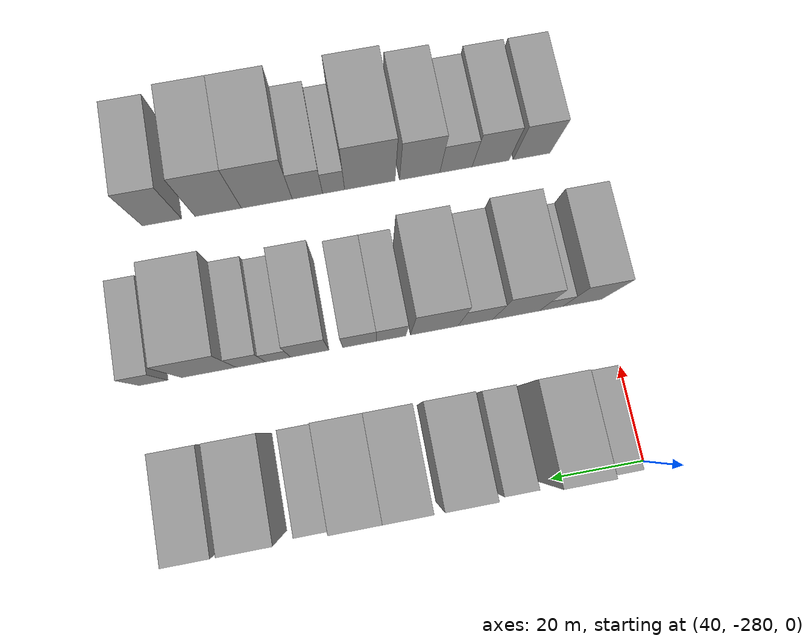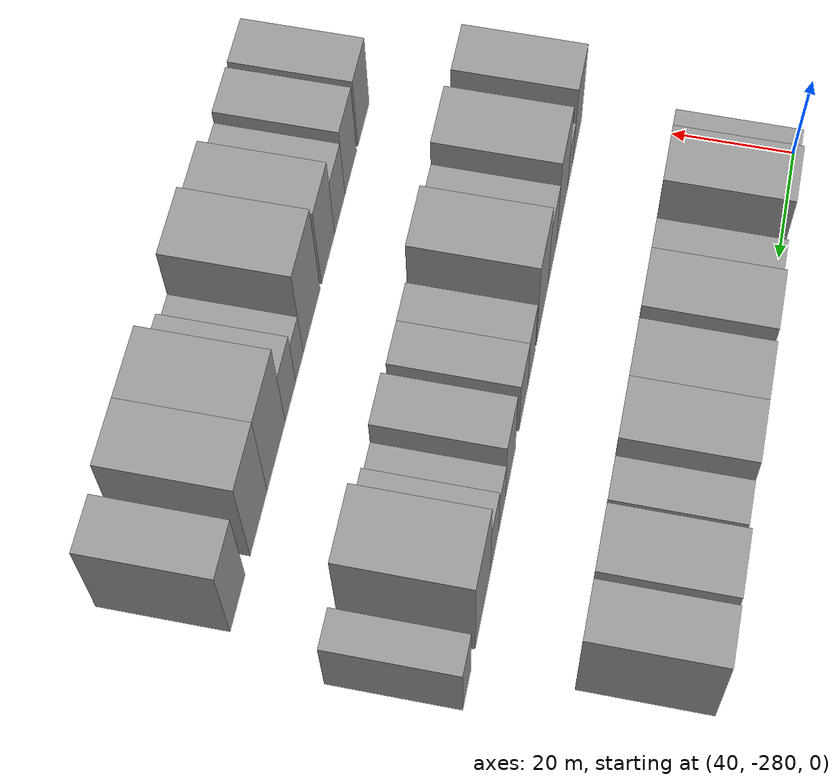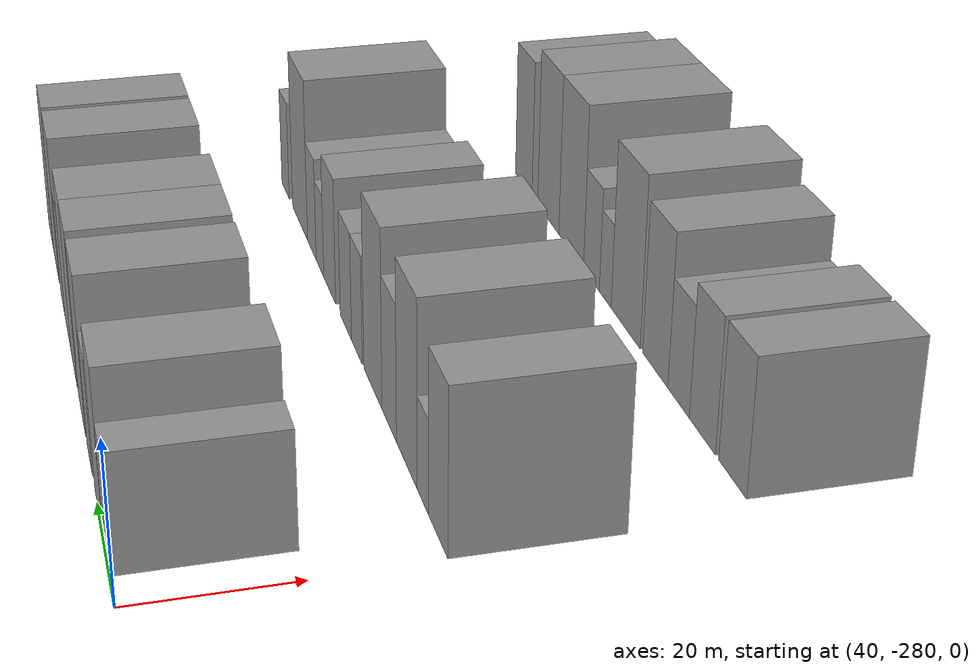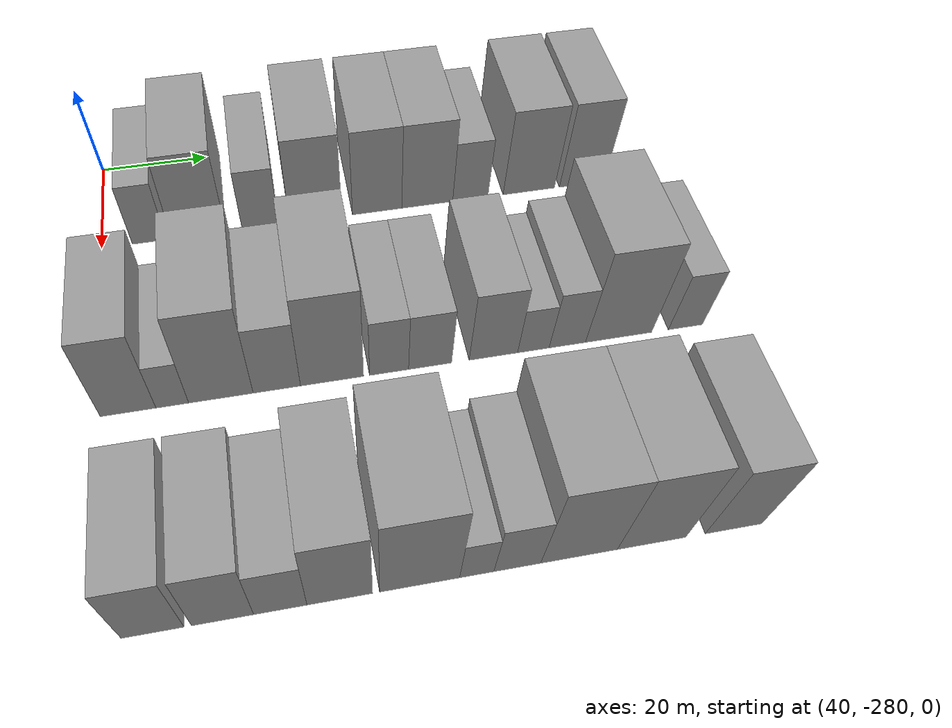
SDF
<sdf version="1.6">
 <world name="default">
  <model name="building_12">
   <static>1</static>
   <pose>50.0000 -271.3896 0 0.000000 0.000000 0.000000</pose>
   <link name="link">
    <pose>0 0 7.50 0 0 0</pose>
    <collision name="collision"><geometry><box><size>20.0000 6.1216 15.0000</size></box></geometry></collision>
    <visual name="visual">
     <cast_shadows>0</cast_shadows>
     <geometry><box><size>20.0000 6.1216 15.0000</size></box></geometry>
     <material>
      <script>
       <uri>model://grey_wall/materials/scripts</uri>
       <uri>model://grey_wall/materials/textures</uri>
       <name>vrc/grey_wall</name>
      </script>
     </material>
    </visual>
   </link>
  </model>
  <model name="building_13">
   <static>1</static>
   <pose>50.0000 -262.3247 0 0.000000 0.000000 0.000000</pose>
   <link name="link">
    <pose>0 0 10.50 0 0 0</pose>
    <collision name="collision"><geometry><box><size>20.0000 10.0081 21.0000</size></box></geometry></collision>
    <visual name="visual">
     <cast_shadows>0</cast_shadows>
     <geometry><box><size>20.0000 10.0081 21.0000</size></box></geometry>
     <material>
      <script>
       <uri>model://grey_wall/materials/scripts</uri>
       <uri>model://grey_wall/materials/textures</uri>
       <name>vrc/grey_wall</name>
      </script>
     </material>
    </visual>
   </link>
  </model>
  <model name="building_14">
   <static>1</static>
   <pose>50.0000 -250.9115 0 0.000000 0.000000 0.000000</pose>
   <link name="link">
    <pose>0 0 7.50 0 0 0</pose>
    <collision name="collision"><geometry><box><size>20.0000 6.8184 15.0000</size></box></geometry></collision>
    <visual name="visual">
     <cast_shadows>0</cast_shadows>
     <geometry><box><size>20.0000 6.8184 15.0000</size></box></geometry>
     <material>
      <script>
       <uri>model://grey_wall/materials/scripts</uri>
       <uri>model://grey_wall/materials/textures</uri>
       <name>vrc/grey_wall</name>
      </script>
     </material>
    </visual>
   </link>
  </model>
  <model name="building_15">
   <static>1</static>
   <pose>50.0000 -240.5385 0 0.000000 0.000000 0.000000</pose>
   <link name="link">
    <pose>0 0 10.50 0 0 0</pose>
    <collision name="collision"><geometry><box><size>20.0000 9.9277 21.0000</size></box></geometry></collision>
    <visual name="visual">
     <cast_shadows>0</cast_shadows>
     <geometry><box><size>20.0000 9.9277 21.0000</size></box></geometry>
     <material>
      <script>
       <uri>model://grey_wall/materials/scripts</uri>
       <uri>model://grey_wall/materials/textures</uri>
       <name>vrc/grey_wall</name>
      </script>
     </material>
    </visual>
   </link>
  </model>
  <model name="building_16">
   <static>1</static>
   <pose>50.0000 -228.8599 0 0.000000 0.000000 0.000000</pose>
   <link name="link">
    <pose>0 0 10.50 0 0 0</pose>
    <collision name="collision"><geometry><box><size>20.0000 9.4294 21.0000</size></box></geometry></collision>
    <visual name="visual">
     <cast_shadows>0</cast_shadows>
     <geometry><box><size>20.0000 9.4294 21.0000</size></box></geometry>
     <material>
      <script>
       <uri>model://grey_wall/materials/scripts</uri>
       <uri>model://grey_wall/materials/textures</uri>
       <name>vrc/grey_wall</name>
      </script>
     </material>
    </visual>
   </link>
  </model>
  <model name="building_17">
   <static>1</static>
   <pose>50.0000 -219.2038 0 0.000000 0.000000 0.000000</pose>
   <link name="link">
    <pose>0 0 10.50 0 0 0</pose>
    <collision name="collision"><geometry><box><size>20.0000 9.8827 21.0000</size></box></geometry></collision>
    <visual name="visual">
     <cast_shadows>0</cast_shadows>
     <geometry><box><size>20.0000 9.8827 21.0000</size></box></geometry>
     <material>
      <script>
       <uri>model://grey_wall/materials/scripts</uri>
       <uri>model://grey_wall/materials/textures</uri>
       <name>vrc/grey_wall</name>
      </script>
     </material>
    </visual>
   </link>
  </model>
  <model name="building_18">
   <static>1</static>
   <pose>50.0000 -210.8104 0 0.000000 0.000000 0.000000</pose>
   <link name="link">
    <pose>0 0 7.50 0 0 0</pose>
    <collision name="collision"><geometry><box><size>20.0000 6.9042 15.0000</size></box></geometry></collision>
    <visual name="visual">
     <cast_shadows>0</cast_shadows>
     <geometry><box><size>20.0000 6.9042 15.0000</size></box></geometry>
     <material>
      <script>
       <uri>model://grey_wall/materials/scripts</uri>
       <uri>model://grey_wall/materials/textures</uri>
       <name>vrc/grey_wall</name>
      </script>
     </material>
    </visual>
   </link>
  </model>
  <model name="building_19">
   <static>1</static>
   <pose>50.0000 -199.2512 0 0.000000 0.000000 0.000000</pose>
   <link name="link">
    <pose>0 0 10.50 0 0 0</pose>
    <collision name="collision"><geometry><box><size>20.0000 10.2143 21.0000</size></box></geometry></collision>
    <visual name="visual">
     <cast_shadows>0</cast_shadows>
     <geometry><box><size>20.0000 10.2143 21.0000</size></box></geometry>
     <material>
      <script>
       <uri>model://grey_wall/materials/scripts</uri>
       <uri>model://grey_wall/materials/textures</uri>
       <name>vrc/grey_wall</name>
      </script>
     </material>
    </visual>
   </link>
  </model>
  <model name="building_20">
   <static>1</static>
   <pose>50.0000 -188.6568 0 0.000000 0.000000 0.000000</pose>
   <link name="link">
    <pose>0 0 10.50 0 0 0</pose>
    <collision name="collision"><geometry><box><size>20.0000 8.9744 21.0000</size></box></geometry></collision>
    <visual name="visual">
     <cast_shadows>0</cast_shadows>
     <geometry><box><size>20.0000 8.9744 21.0000</size></box></geometry>
     <material>
      <script>
       <uri>model://grey_wall/materials/scripts</uri>
       <uri>model://grey_wall/materials/textures</uri>
       <name>vrc/grey_wall</name>
      </script>
     </material>
    </visual>
   </link>
  </model>
  <model name="building_93">
   <static>1</static>
   <pose>85.0000 -275.2785 0 0.000000 0.000000 0.000000</pose>
   <link name="link">
    <pose>0 0 10.50 0 0 0</pose>
    <collision name="collision"><geometry><box><size>20.0000 8.7915 21.0000</size></box></geometry></collision>
    <visual name="visual">
     <cast_shadows>0</cast_shadows>
     <geometry><box><size>20.0000 8.7915 21.0000</size></box></geometry>
     <material>
      <script>
       <uri>model://grey_wall/materials/scripts</uri>
       <uri>model://grey_wall/materials/textures</uri>
       <name>vrc/grey_wall</name>
      </script>
     </material>
    </visual>
   </link>
  </model>
  <model name="building_94">
   <static>1</static>
   <pose>85.0000 -268.2730 0 0.000000 0.000000 0.000000</pose>
   <link name="link">
    <pose>0 0 6.00 0 0 0</pose>
    <collision name="collision"><geometry><box><size>20.0000 5.2194 12.0000</size></box></geometry></collision>
    <visual name="visual">
     <cast_shadows>0</cast_shadows>
     <geometry><box><size>20.0000 5.2194 12.0000</size></box></geometry>
     <material>
      <script>
       <uri>model://grey_wall/materials/scripts</uri>
       <uri>model://grey_wall/materials/textures</uri>
       <name>vrc/grey_wall</name>
      </script>
     </material>
    </visual>
   </link>
  </model>
  <model name="building_95">
   <static>1</static>
   <pose>85.0000 -260.4725 0 0.000000 0.000000 0.000000</pose>
   <link name="link">
    <pose>0 0 12.00 0 0 0</pose>
    <collision name="collision"><geometry><box><size>20.0000 10.3818 24.0000</size></box></geometry></collision>
    <visual name="visual">
     <cast_shadows>0</cast_shadows>
     <geometry><box><size>20.0000 10.3818 24.0000</size></box></geometry>
     <material>
      <script>
       <uri>model://grey_wall/materials/scripts</uri>
       <uri>model://grey_wall/materials/textures</uri>
       <name>vrc/grey_wall</name>
      </script>
     </material>
    </visual>
   </link>
  </model>
  <model name="building_96">
   <static>1</static>
   <pose>85.0000 -251.4131 0 0.000000 0.000000 0.000000</pose>
   <link name="link">
    <pose>0 0 9.00 0 0 0</pose>
    <collision name="collision"><geometry><box><size>20.0000 7.7370 18.0000</size></box></geometry></collision>
    <visual name="visual">
     <cast_shadows>0</cast_shadows>
     <geometry><box><size>20.0000 7.7370 18.0000</size></box></geometry>
     <material>
      <script>
       <uri>model://grey_wall/materials/scripts</uri>
       <uri>model://grey_wall/materials/textures</uri>
       <name>vrc/grey_wall</name>
      </script>
     </material>
    </visual>
   </link>
  </model>
  <model name="building_97">
   <static>1</static>
   <pose>85.0000 -242.3203 0 0.000000 0.000000 0.000000</pose>
   <link name="link">
    <pose>0 0 12.00 0 0 0</pose>
    <collision name="collision"><geometry><box><size>20.0000 10.4485 24.0000</size></box></geometry></collision>
    <visual name="visual">
     <cast_shadows>0</cast_shadows>
     <geometry><box><size>20.0000 10.4485 24.0000</size></box></geometry>
     <material>
      <script>
       <uri>model://grey_wall/materials/scripts</uri>
       <uri>model://grey_wall/materials/textures</uri>
       <name>vrc/grey_wall</name>
      </script>
     </material>
    </visual>
   </link>
  </model>
  <model name="building_98">
   <static>1</static>
   <pose>85.0000 -232.8315 0 0.000000 0.000000 0.000000</pose>
   <link name="link">
    <pose>0 0 7.50 0 0 0</pose>
    <collision name="collision"><geometry><box><size>20.0000 6.5291 15.0000</size></box></geometry></collision>
    <visual name="visual">
     <cast_shadows>0</cast_shadows>
     <geometry><box><size>20.0000 6.5291 15.0000</size></box></geometry>
     <material>
      <script>
       <uri>model://grey_wall/materials/scripts</uri>
       <uri>model://grey_wall/materials/textures</uri>
       <name>vrc/grey_wall</name>
      </script>
     </material>
    </visual>
   </link>
  </model>
  <model name="building_99">
   <static>1</static>
   <pose>85.0000 -225.9193 0 0.000000 0.000000 0.000000</pose>
   <link name="link">
    <pose>0 0 7.50 0 0 0</pose>
    <collision name="collision"><geometry><box><size>20.0000 7.2953 15.0000</size></box></geometry></collision>
    <visual name="visual">
     <cast_shadows>0</cast_shadows>
     <geometry><box><size>20.0000 7.2953 15.0000</size></box></geometry>
     <material>
      <script>
       <uri>model://grey_wall/materials/scripts</uri>
       <uri>model://grey_wall/materials/textures</uri>
       <name>vrc/grey_wall</name>
      </script>
     </material>
    </visual>
   </link>
  </model>
  <model name="building_100">
   <static>1</static>
   <pose>85.0000 -215.1066 0 0.000000 0.000000 0.000000</pose>
   <link name="link">
    <pose>0 0 9.00 0 0 0</pose>
    <collision name="collision"><geometry><box><size>20.0000 8.3299 18.0000</size></box></geometry></collision>
    <visual name="visual">
     <cast_shadows>0</cast_shadows>
     <geometry><box><size>20.0000 8.3299 18.0000</size></box></geometry>
     <material>
      <script>
       <uri>model://grey_wall/materials/scripts</uri>
       <uri>model://grey_wall/materials/textures</uri>
       <name>vrc/grey_wall</name>
      </script>
     </material>
    </visual>
   </link>
  </model>
  <model name="building_101">
   <static>1</static>
   <pose>85.0000 -208.2094 0 0.000000 0.000000 0.000000</pose>
   <link name="link">
    <pose>0 0 6.00 0 0 0</pose>
    <collision name="collision"><geometry><box><size>20.0000 5.4647 12.0000</size></box></geometry></collision>
    <visual name="visual">
     <cast_shadows>0</cast_shadows>
     <geometry><box><size>20.0000 5.4647 12.0000</size></box></geometry>
     <material>
      <script>
       <uri>model://grey_wall/materials/scripts</uri>
       <uri>model://grey_wall/materials/textures</uri>
       <name>vrc/grey_wall</name>
      </script>
     </material>
    </visual>
   </link>
  </model>
  <model name="building_102">
   <static>1</static>
   <pose>85.0000 -202.2916 0 0.000000 0.000000 0.000000</pose>
   <link name="link">
    <pose>0 0 7.50 0 0 0</pose>
    <collision name="collision"><geometry><box><size>20.0000 6.3708 15.0000</size></box></geometry></collision>
    <visual name="visual">
     <cast_shadows>0</cast_shadows>
     <geometry><box><size>20.0000 6.3708 15.0000</size></box></geometry>
     <material>
      <script>
       <uri>model://grey_wall/materials/scripts</uri>
       <uri>model://grey_wall/materials/textures</uri>
       <name>vrc/grey_wall</name>
      </script>
     </material>
    </visual>
   </link>
  </model>
  <model name="building_103">
   <static>1</static>
   <pose>85.0000 -193.2268 0 0.000000 0.000000 0.000000</pose>
   <link name="link">
    <pose>0 0 12.00 0 0 0</pose>
    <collision name="collision"><geometry><box><size>20.0000 11.7588 24.0000</size></box></geometry></collision>
    <visual name="visual">
     <cast_shadows>0</cast_shadows>
     <geometry><box><size>20.0000 11.7588 24.0000</size></box></geometry>
     <material>
      <script>
       <uri>model://grey_wall/materials/scripts</uri>
       <uri>model://grey_wall/materials/textures</uri>
       <name>vrc/grey_wall</name>
      </script>
     </material>
    </visual>
   </link>
  </model>
  <model name="building_104">
   <static>1</static>
   <pose>85.0000 -181.2729 0 0.000000 0.000000 0.000000</pose>
   <link name="link">
    <pose>0 0 7.50 0 0 0</pose>
    <collision name="collision"><geometry><box><size>20.0000 6.1491 15.0000</size></box></geometry></collision>
    <visual name="visual">
     <cast_shadows>0</cast_shadows>
     <geometry><box><size>20.0000 6.1491 15.0000</size></box></geometry>
     <material>
      <script>
       <uri>model://grey_wall/materials/scripts</uri>
       <uri>model://grey_wall/materials/textures</uri>
       <name>vrc/grey_wall</name>
      </script>
     </material>
    </visual>
   </link>
  </model>
  <model name="building_176">
   <static>1</static>
   <pose>120.0000 -272.0282 0 0.000000 0.000000 0.000000</pose>
   <link name="link">
    <pose>0 0 9.00 0 0 0</pose>
    <collision name="collision"><geometry><box><size>20.0000 8.5595 18.0000</size></box></geometry></collision>
    <visual name="visual">
     <cast_shadows>0</cast_shadows>
     <geometry><box><size>20.0000 8.5595 18.0000</size></box></geometry>
     <material>
      <script>
       <uri>model://grey_wall/materials/scripts</uri>
       <uri>model://grey_wall/materials/textures</uri>
       <name>vrc/grey_wall</name>
      </script>
     </material>
    </visual>
   </link>
  </model>
  <model name="building_177">
   <static>1</static>
   <pose>120.0000 -262.4660 0 0.000000 0.000000 0.000000</pose>
   <link name="link">
    <pose>0 0 9.00 0 0 0</pose>
    <collision name="collision"><geometry><box><size>20.0000 8.5649 18.0000</size></box></geometry></collision>
    <visual name="visual">
     <cast_shadows>0</cast_shadows>
     <geometry><box><size>20.0000 8.5649 18.0000</size></box></geometry>
     <material>
      <script>
       <uri>model://grey_wall/materials/scripts</uri>
       <uri>model://grey_wall/materials/textures</uri>
       <name>vrc/grey_wall</name>
      </script>
     </material>
    </visual>
   </link>
  </model>
  <model name="building_178">
   <static>1</static>
   <pose>120.0000 -254.4571 0 0.000000 0.000000 0.000000</pose>
   <link name="link">
    <pose>0 0 7.50 0 0 0</pose>
    <collision name="collision"><geometry><box><size>20.0000 7.4528 15.0000</size></box></geometry></collision>
    <visual name="visual">
     <cast_shadows>0</cast_shadows>
     <geometry><box><size>20.0000 7.4528 15.0000</size></box></geometry>
     <material>
      <script>
       <uri>model://grey_wall/materials/scripts</uri>
       <uri>model://grey_wall/materials/textures</uri>
       <name>vrc/grey_wall</name>
      </script>
     </material>
    </visual>
   </link>
  </model>
  <model name="building_179">
   <static>1</static>
   <pose>120.0000 -246.0916 0 0.000000 0.000000 0.000000</pose>
   <link name="link">
    <pose>0 0 10.50 0 0 0</pose>
    <collision name="collision"><geometry><box><size>20.0000 9.2782 21.0000</size></box></geometry></collision>
    <visual name="visual">
     <cast_shadows>0</cast_shadows>
     <geometry><box><size>20.0000 9.2782 21.0000</size></box></geometry>
     <material>
      <script>
       <uri>model://grey_wall/materials/scripts</uri>
       <uri>model://grey_wall/materials/textures</uri>
       <name>vrc/grey_wall</name>
      </script>
     </material>
    </visual>
   </link>
  </model>
  <model name="building_180">
   <static>1</static>
   <pose>120.0000 -234.6764 0 0.000000 0.000000 0.000000</pose>
   <link name="link">
    <pose>0 0 12.00 0 0 0</pose>
    <collision name="collision"><geometry><box><size>20.0000 11.5521 24.0000</size></box></geometry></collision>
    <visual name="visual">
     <cast_shadows>0</cast_shadows>
     <geometry><box><size>20.0000 11.5521 24.0000</size></box></geometry>
     <material>
      <script>
       <uri>model://grey_wall/materials/scripts</uri>
       <uri>model://grey_wall/materials/textures</uri>
       <name>vrc/grey_wall</name>
      </script>
     </material>
    </visual>
   </link>
  </model>
  <model name="building_181">
   <static>1</static>
   <pose>120.0000 -226.3959 0 0.000000 0.000000 0.000000</pose>
   <link name="link">
    <pose>0 0 6.00 0 0 0</pose>
    <collision name="collision"><geometry><box><size>20.0000 5.0089 12.0000</size></box></geometry></collision>
    <visual name="visual">
     <cast_shadows>0</cast_shadows>
     <geometry><box><size>20.0000 5.0089 12.0000</size></box></geometry>
     <material>
      <script>
       <uri>model://grey_wall/materials/scripts</uri>
       <uri>model://grey_wall/materials/textures</uri>
       <name>vrc/grey_wall</name>
      </script>
     </material>
    </visual>
   </link>
  </model>
  <model name="building_182">
   <static>1</static>
   <pose>120.0000 -220.4311 0 0.000000 0.000000 0.000000</pose>
   <link name="link">
    <pose>0 0 7.50 0 0 0</pose>
    <collision name="collision"><geometry><box><size>20.0000 6.9206 15.0000</size></box></geometry></collision>
    <visual name="visual">
     <cast_shadows>0</cast_shadows>
     <geometry><box><size>20.0000 6.9206 15.0000</size></box></geometry>
     <material>
      <script>
       <uri>model://grey_wall/materials/scripts</uri>
       <uri>model://grey_wall/materials/textures</uri>
       <name>vrc/grey_wall</name>
      </script>
     </material>
    </visual>
   </link>
  </model>
  <model name="building_183">
   <static>1</static>
   <pose>120.0000 -211.2087 0 0.000000 0.000000 0.000000</pose>
   <link name="link">
    <pose>0 0 12.00 0 0 0</pose>
    <collision name="collision"><geometry><box><size>20.0000 11.5242 24.0000</size></box></geometry></collision>
    <visual name="visual">
     <cast_shadows>0</cast_shadows>
     <geometry><box><size>20.0000 11.5242 24.0000</size></box></geometry>
     <material>
      <script>
       <uri>model://grey_wall/materials/scripts</uri>
       <uri>model://grey_wall/materials/textures</uri>
       <name>vrc/grey_wall</name>
      </script>
     </material>
    </visual>
   </link>
  </model>
  <model name="building_184">
   <static>1</static>
   <pose>120.0000 -200.2118 0 0.000000 0.000000 0.000000</pose>
   <link name="link">
    <pose>0 0 12.00 0 0 0</pose>
    <collision name="collision"><geometry><box><size>20.0000 10.4697 24.0000</size></box></geometry></collision>
    <visual name="visual">
     <cast_shadows>0</cast_shadows>
     <geometry><box><size>20.0000 10.4697 24.0000</size></box></geometry>
     <material>
      <script>
       <uri>model://grey_wall/materials/scripts</uri>
       <uri>model://grey_wall/materials/textures</uri>
       <name>vrc/grey_wall</name>
      </script>
     </material>
    </visual>
   </link>
  </model>
  <model name="building_185">
   <static>1</static>
   <pose>120.0000 -187.5661 0 0.000000 0.000000 0.000000</pose>
   <link name="link">
    <pose>0 0 10.50 0 0 0</pose>
    <collision name="collision"><geometry><box><size>20.0000 8.8217 21.0000</size></box></geometry></collision>
    <visual name="visual">
     <cast_shadows>0</cast_shadows>
     <geometry><box><size>20.0000 8.8217 21.0000</size></box></geometry>
     <material>
      <script>
       <uri>model://grey_wall/materials/scripts</uri>
       <uri>model://grey_wall/materials/textures</uri>
       <name>vrc/grey_wall</name>
      </script>
     </material>
    </visual>
   </link>
  </model>
 </world>
</sdf>
